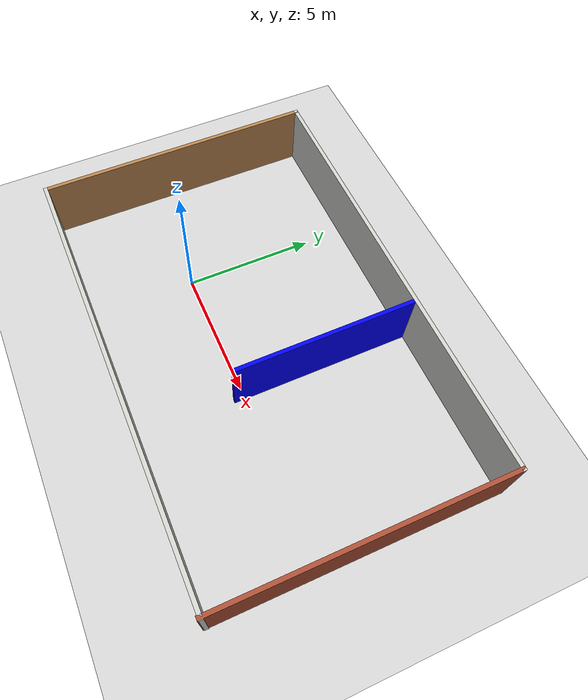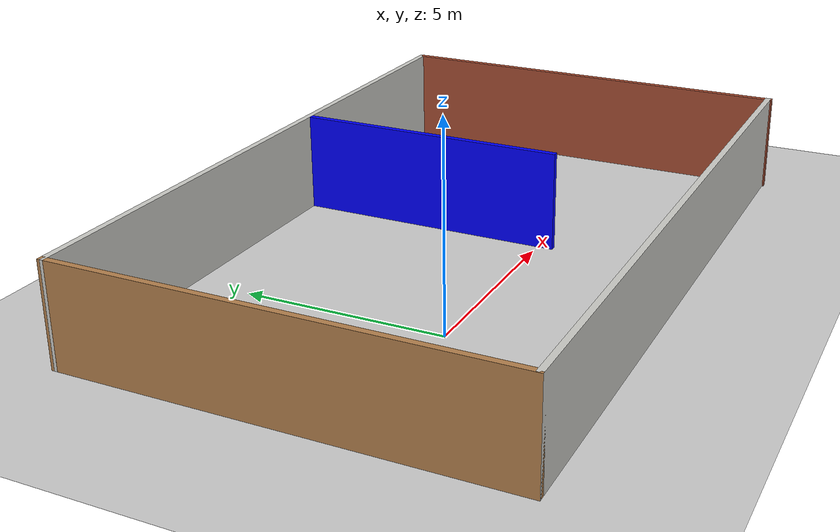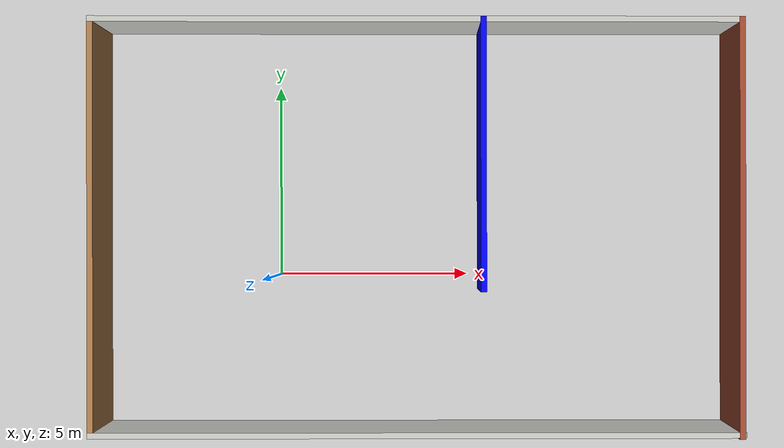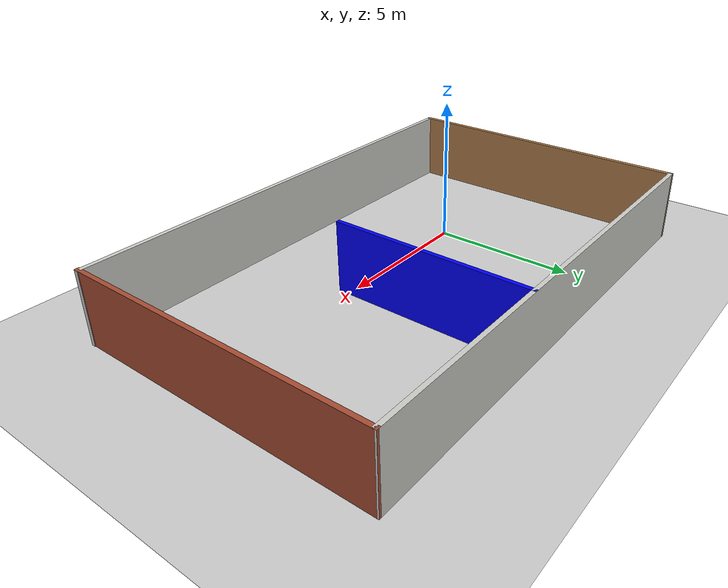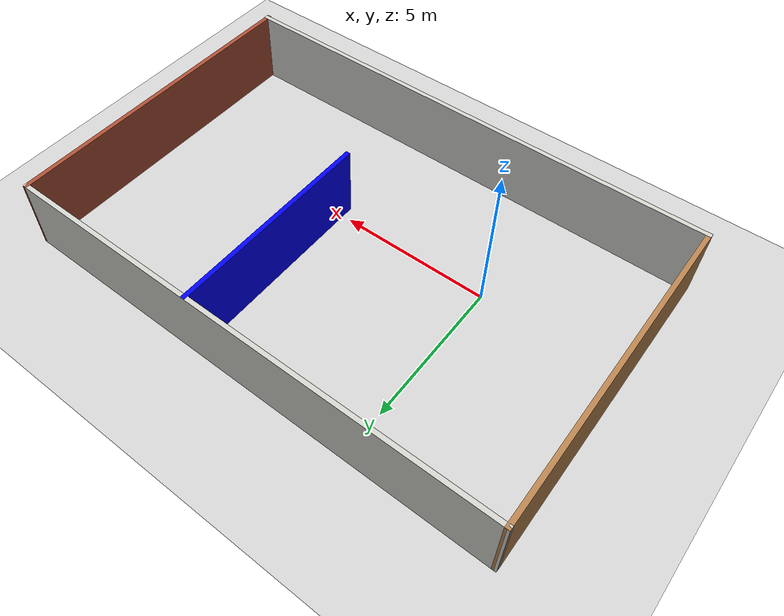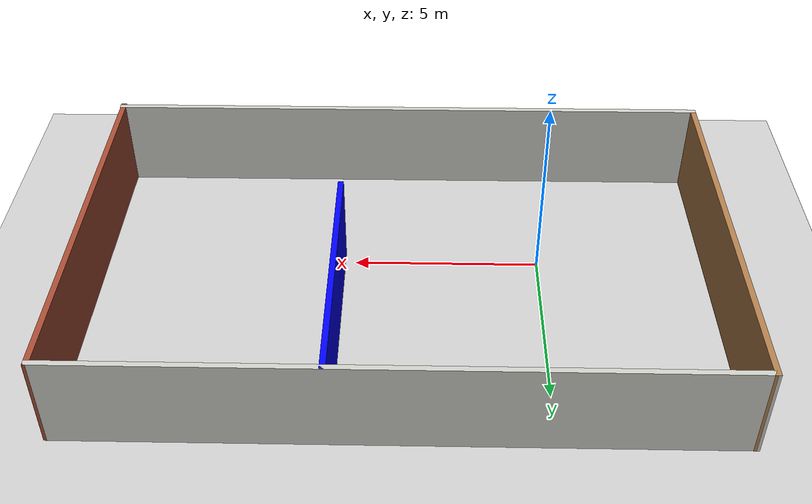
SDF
<sdf version="1.6">
 <world name="default">
  <light name="sun" type="directional">
   <pose>0 0 10 0 -0 0</pose>
   <diffuse>0.8 0.8 0.8 1</diffuse>
   <specular>0.2 0.2 0.2 1</specular>
   <attenuation>
    <range>1000</range>
    <constant>0.9</constant>
    <linear>0.01</linear>
    <quadratic>0.001</quadratic>
   </attenuation>
   <direction>-0.5 0.1 -0.9</direction>
  </light>
  <model name="ground_plane">
   <static>1</static>
   <link name="link">
    <collision name="collision">
     <geometry><plane><normal>0 0 1</normal><size>100 100</size></plane></geometry>
     <surface>
      <contact><collide_bitmask>65535</collide_bitmask></contact>
      <friction><ode><mu>100</mu><mu2>50</mu2></ode></friction>
     </surface>
    </collision>
    <visual name="visual">
     <cast_shadows>0</cast_shadows>
     <geometry><plane><normal>0 0 1</normal><size>100 100</size></plane></geometry>
     <material>
      <script><uri>file://media/materials/scripts/gazebo.material</uri><name>Gazebo/Grey</name></script>
     </material>
    </visual>
   </link>
  </model>
  <gravity>0 0 -9.8</gravity>
  <magnetic_field>6e-06 2.3e-05 -4.2e-05</magnetic_field>
  <atmosphere type="adiabatic"/>
  <physics name="default_physics" default="0" type="ode">
   <max_step_size>0.001</max_step_size>
   <real_time_factor>1</real_time_factor>
   <real_time_update_rate>1000</real_time_update_rate>
  </physics>
  <scene><ambient>0.4 0.4 0.4 1</ambient><background>0.7 0.7 0.7 1</background><shadows>1</shadows></scene>
  <spherical_coordinates>
   <surface_model>EARTH_WGS84</surface_model>
   <latitude_deg>0</latitude_deg>
   <longitude_deg>0</longitude_deg>
   <elevation>0</elevation>
   <heading_deg>0</heading_deg>
  </spherical_coordinates>
  <model name="simpleB">
   <pose>3.65404 1.24783 0 0 -0 0</pose>
   <link name="Wall_11">
    <collision name="Wall_11_Collision">
     <geometry><box><size>10.75 0.15 2.5</size></box></geometry>
     <pose>0 0 1.25 0 -0 0</pose>
    </collision>
    <visual name="Wall_11_Visual">
     <pose>0 0 1.25 0 -0 0</pose>
     <geometry><box><size>10.75 0.15 2.5</size></box></geometry>
     <material>
      <script><uri>file://media/materials/scripts/gazebo.material</uri><name>Gazebo/Bricks</name></script>
      <ambient>1 1 1 1</ambient>
     </material>
     <meta><layer>0</layer></meta>
    </visual>
    <pose>8.28076 -0.017668 0 0 0 -1.5708</pose>
   </link>
   <link name="Wall_13">
    <collision name="Wall_13_Collision">
     <geometry><box><size>7 0.15 2.5</size></box></geometry>
     <pose>0 0 1.25 0 -0 0</pose>
    </collision>
    <visual name="Wall_13_Visual">
     <pose>0 0 1.25 0 -0 0</pose>
     <geometry><box><size>7 0.15 2.5</size></box></geometry>
     <material>
      <script><uri>file://media/materials/scripts/gazebo.material</uri><name>Gazebo/Grey</name></script>
      <ambient>0 0 1 1</ambient>
     </material>
     <meta><layer>0</layer></meta>
    </visual>
    <pose>1.70844 1.85733 0 0 0 -1.5708</pose>
   </link>
   <link name="Wall_15">
    <collision name="Wall_15_Collision">
     <geometry><box><size>16.75 0.15 2.5</size></box></geometry>
     <pose>0 0 1.25 0 -0 0</pose>
    </collision>
    <visual name="Wall_15_Visual">
     <pose>0 0 1.25 0 -0 0</pose>
     <geometry><box><size>16.75 0.15 2.5</size></box></geometry>
     <material>
      <script><uri>file://media/materials/scripts/gazebo.material</uri><name>Gazebo/CeilingTiled</name></script>
      <ambient>0.435294 0.796078 0.67451 1</ambient>
     </material>
     <meta><layer>0</layer></meta>
    </visual>
    <pose>8e-05 -5.28249 0 0 -0 0</pose>
   </link>
   <link name="Wall_17">
    <collision name="Wall_17_Collision">
     <geometry><box><size>16.7307 0.15 2.5</size></box></geometry>
     <pose>0 0 1.25 0 -0 0</pose>
    </collision>
    <visual name="Wall_17_Visual">
     <pose>0 0 1.25 0 -0 0</pose>
     <geometry><box><size>16.7307 0.15 2.5</size></box></geometry>
     <material>
      <script><uri>file://media/materials/scripts/gazebo.material</uri><name>Gazebo/CeilingTiled</name></script>
      <ambient>0.65098 1 0.192157 1</ambient>
     </material>
     <meta><layer>0</layer></meta>
    </visual>
    <pose>-0.009579 5.29992 0 0 0 -0.002122</pose>
   </link>
   <link name="Wall_6">
    <collision name="Wall_6_Collision">
     <geometry><box><size>10.75 0.15 2.5</size></box></geometry>
     <pose>0 0 1.25 0 -0 0</pose>
    </collision>
    <visual name="Wall_6_Visual">
     <pose>0 0 1.25 0 -0 0</pose>
     <geometry><box><size>10.75 0.15 2.5</size></box></geometry>
     <material>
      <script><uri>file://media/materials/scripts/gazebo.material</uri><name>Gazebo/Wood</name></script>
      <ambient>1 1 1 1</ambient>
     </material>
     <meta><layer>0</layer></meta>
    </visual>
    <pose>-8.29992 0.01751 0 0 0 -1.5708</pose>
   </link>
   <static>1</static>
  </model>
 </world>
</sdf>
